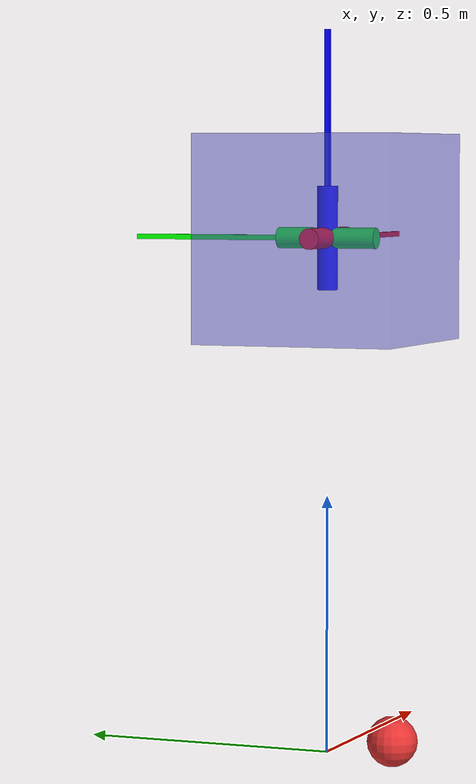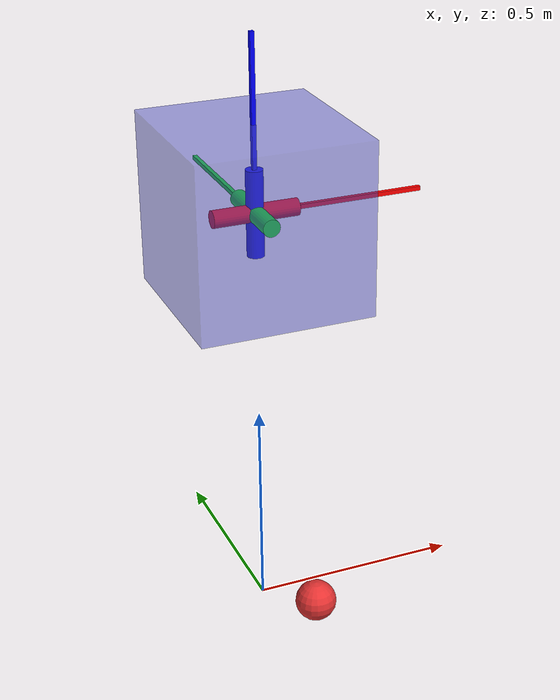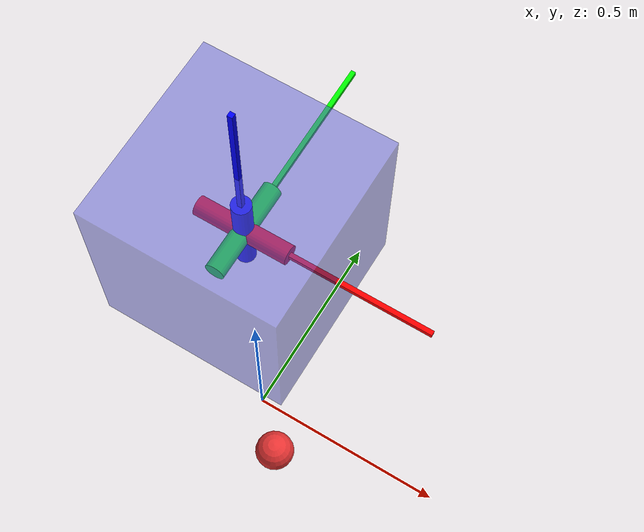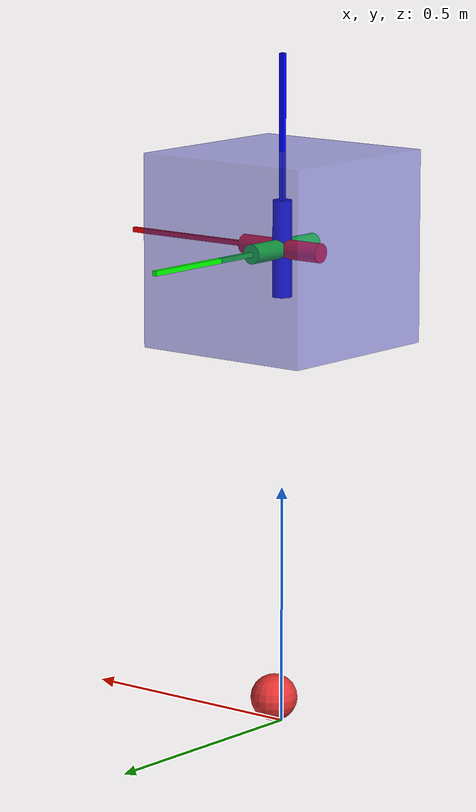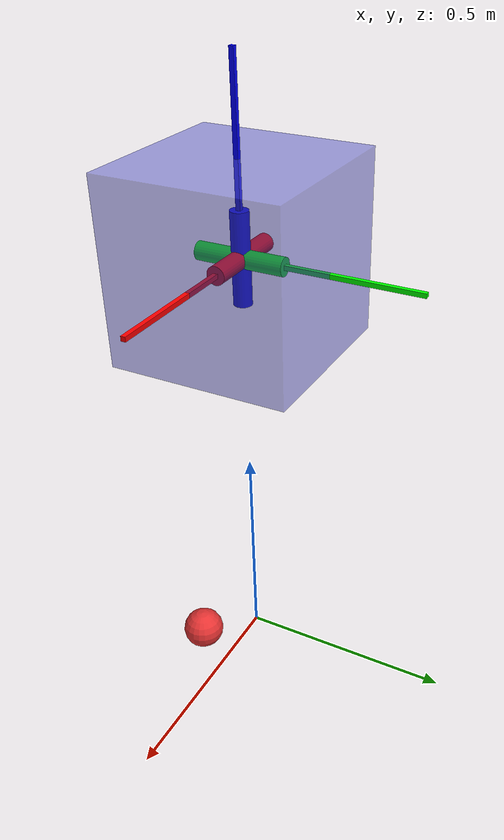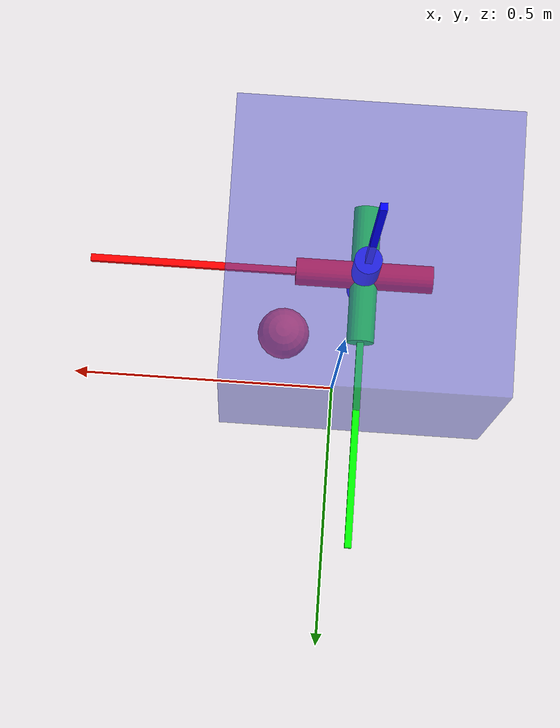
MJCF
<mujoco model="simplethrustboxtZ0">
	<compiler angle="degree" coordinate="local" inertiafromgeom="true"/>
	<option timestep="0.01" gravity="0 0 0" density="1" viscosity="0" integrator="RK4"/>
	<visual>
		<map force="0.1" zfar="30"/>
		<rgba haze="0.15 0.25 0.35 1"/>
		<global offwidth="2560" offheight="1440" elevation="-20" azimuth="120"/>
	</visual>
	<default>
		<joint armature="1" damping="1" limited="true"/>
		<geom conaffinity="1" condim="1" density="5.0" friction="1 0.5 0.5" margin="0.01" rgba="0.8 0.6 0.4 1"/>
		<default class="shoulder">
			<joint pos="0.0 0.0 0.0" stiffness="100" range="30 70" springref="70"/>
		</default>
		<default class="armgeom">
			<geom size="0.08" type="capsule" rgba="1 .6 0 1"/>
		</default>
		<default class="elbow">
			<joint pos="0.0 0.0 0.0" stiffness="100" range="30 70" springref="70"/>
		</default>
		<default class="thruster">
			<site type="cylinder" size="0.02 0.05" rgba="0.3 0.8 0.3 1" quat="1.0 0.0 0.0 0."/>
		</default>
	</default>
	<asset>
		<texture type="skybox" builtin="gradient" rgb1=".3 .5 .7" rgb2="0 0 0" width="32" height="512"/>
	</asset>
	<worldbody>
		<!-- Satellite -->
		<body name="box" pos="0 0 1">
			<geom name="core" pos="0 0 0" quat="1 0 0 0" size=".2 .2 .2" type="box" rgba="0.3 0.3 0.8 .5" mass=".1"/>
			<joint name="root" type="free" damping="0" armature="0" pos="0 0 0"/>
			<site name="IMUmount" pos="0.0 0.0 0.0" type="sphere" size="0.02" quat="1.0 0.0 0.0 0." rgba="1 1 1 1"/>

			<!-- thruster colors determined by xyz->rgb where +x,+y,+z is r=1,b=1,g=1 and -x,-y,-z is r=0,b=0,g=0 -->
			<!-- Thruster geoms -->
			<site name="motorX" fromto="-.1  .0  .0  .1  .0  .0" class="thruster" rgba="1 0 0 1"/>
			<site name="motorY" fromto=" .0 -.1  .0  .0  .1  .0" class="thruster" rgba="0 1 0 1"/>
			<site name="motorZ" fromto=" .0  .0 -.1  .0  .0  .1" class="thruster" rgba="0 0 1 1"/>

			<!-- Visualization of the coordinate frame-->
			<site name="qcX" type="box" pos="0.2 0.0 0.0" size="0.2 0.005 0.005" quat=" 1.000  0.0  0.0    0." rgba="1 0 0 1"/>
			<site name="qcY" type="box" pos="0.0 0.2 0.0" size="0.2 0.005 0.005" quat=" 0.707  0.0  0.0    0.707" rgba="0 1 0 1"/>
			<site name="qcZ" type="box" pos="0.0 0.0 0.2" size="0.2 0.005 0.005" quat="-0.707  0.0  0.707  0." rgba="0 0 1 1"/>
		</body>
		<!-- Target -->
		<body name="target" pos=".1 -.1 .01">
			<camera name = "camera1" mode = "targetbodycom" target = "world" pos="2.370 -2.859 2.423" xyaxes="0.770 0.638 0.000 -0.228 0.275 0.934"/>
			<joint armature="0" axis="1 0 0" damping="0" limited="true" name="target_x" pos="0 0 0" range="-3 3" ref="0" stiffness="0" type="slide"/>
			<joint armature="0" axis="0 1 0" damping="0" limited="true" name="target_y" pos="0 0 0" range="-3 3" ref="0" stiffness="0" type="slide"/>
			<joint armature="0" axis="0 0 1" damping="0" limited="true" name="target_z" pos="0 0 0" range="-3 3" ref="0" stiffness="0" type="slide"/>
			<geom conaffinity="0" contype="0" name="target" pos="0 0 0" rgba="0.9 0.2 0.2 1" size=".05" type="sphere" mass=".1"/>

		</body>
	</worldbody>
	<actuator>
		<motor name="ForceX" ctrllimited="true" ctrlrange="-1. 1.0" gear=".0  .0 -.2  0. 0. 0." site="motorX"/>
		<motor name="ForceY" ctrllimited="true" ctrlrange="-1. 1.0" gear=".0  .0 -.2  0. 0. 0." site="motorY"/>
		<motor name="ForceZ" ctrllimited="true" ctrlrange="-1. 1.0" gear=".0  .0 -.2  0. 0. 0." site="motorZ"/>

		<motor name="TorqueX" ctrllimited="true" ctrlrange="-1. 1.0" gear=".0  .0 .0  0. 0. -.01" site="motorX"/>
		<motor name="TorqueY" ctrllimited="true" ctrlrange="-1. 1.0" gear=".0  .0 .0  0. 0. -.01" site="motorY"/>
		<motor name="TorqueZ" ctrllimited="true" ctrlrange="-1. 1.0" gear=".0  .0 .0  0. 0. -.01" site="motorZ"/>
	</actuator>

	<sensor>
		<accelerometer name="accel" site = "IMUmount"/>
		<gyro name="gyro" site = "IMUmount"/>
	</sensor>
</mujoco>
